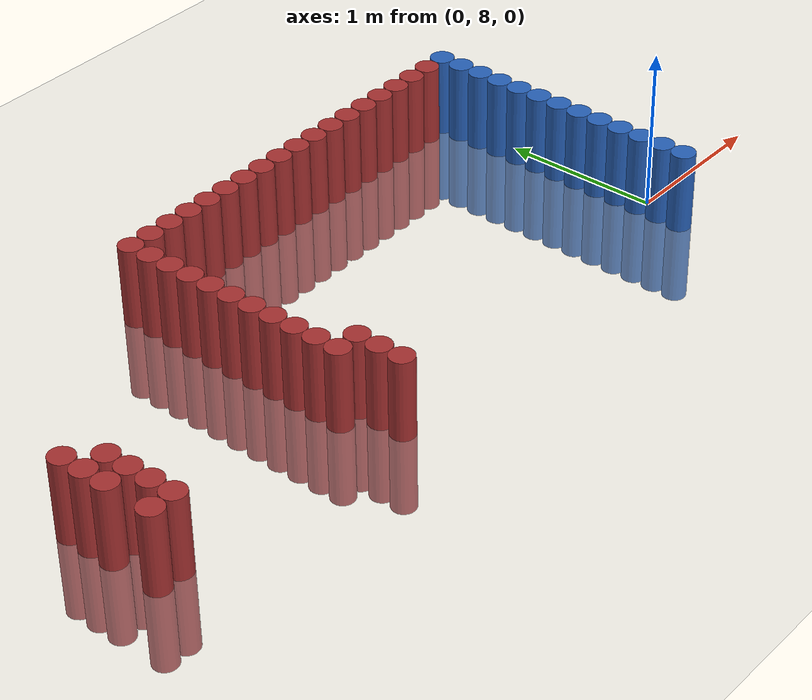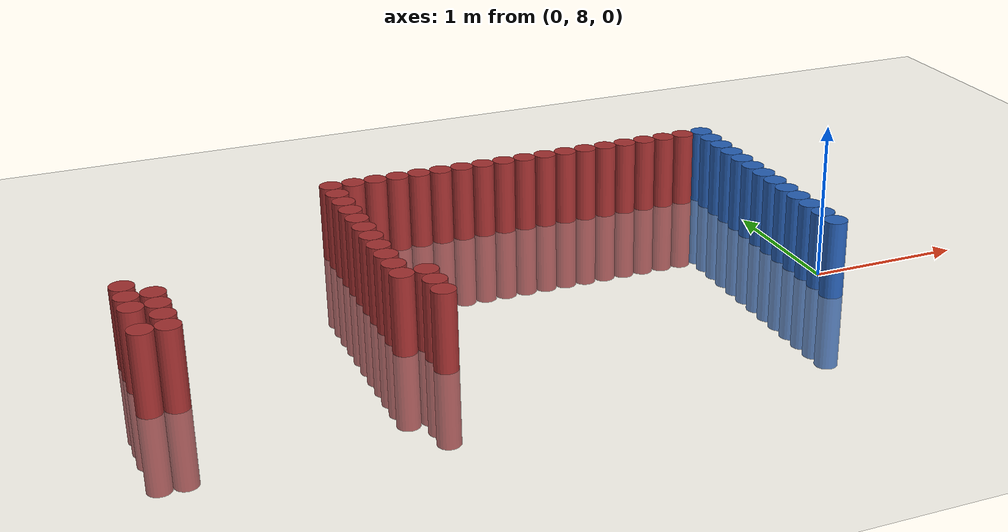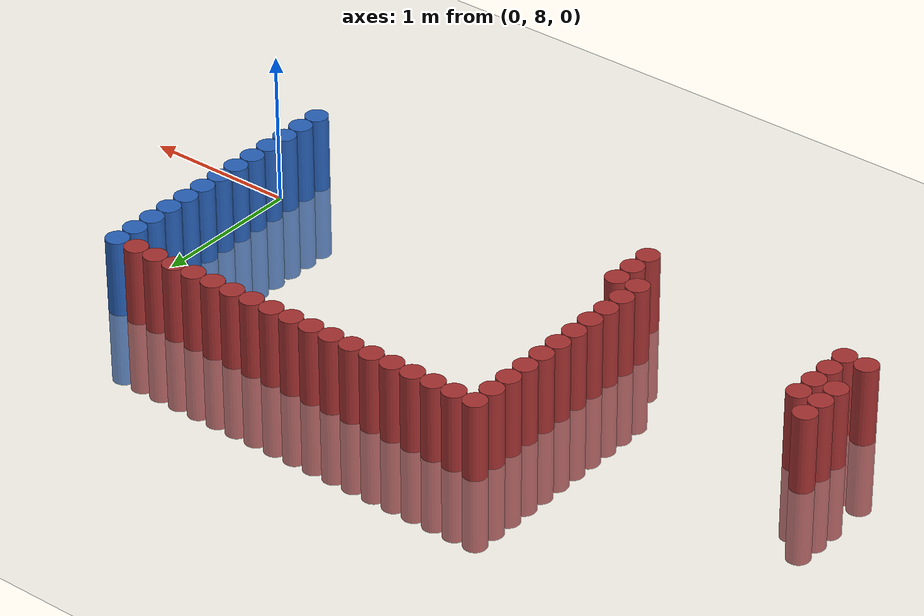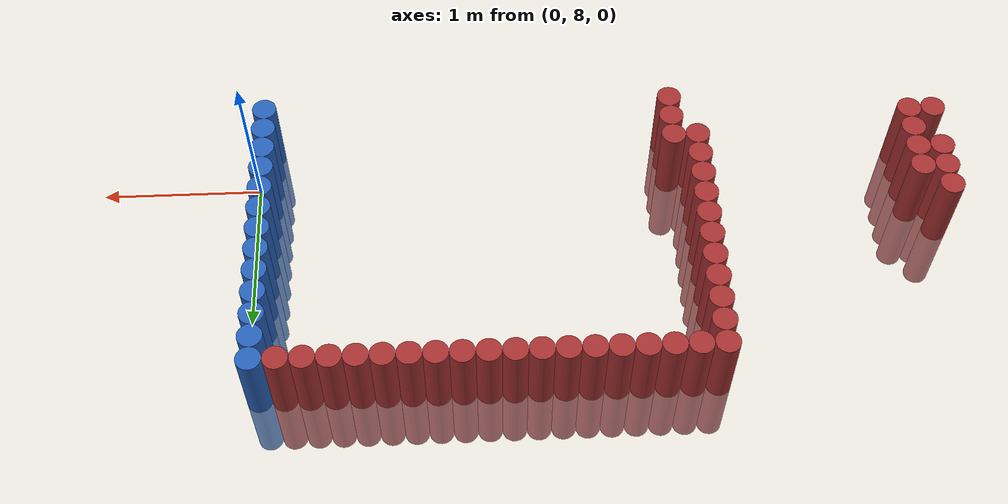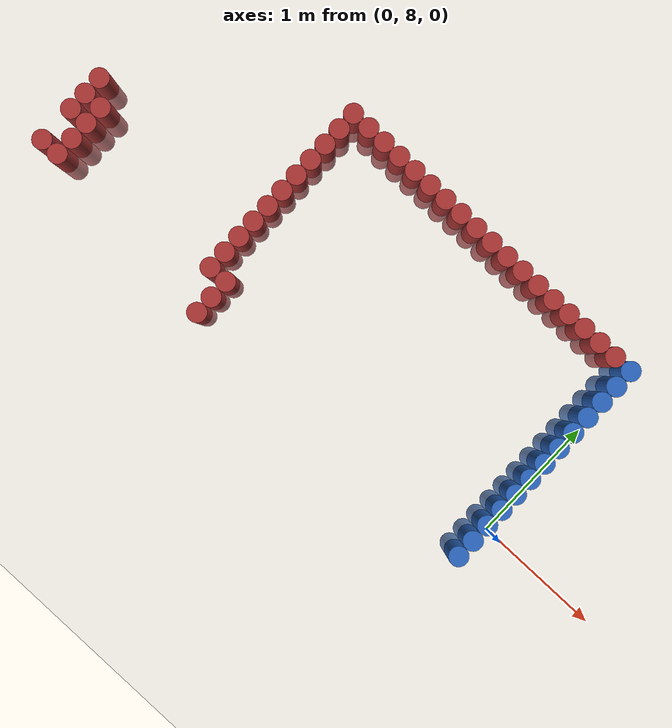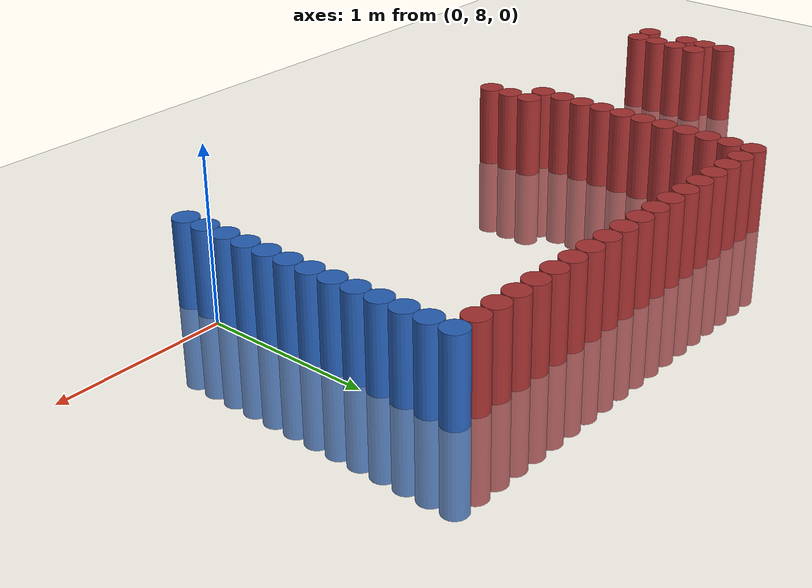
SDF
<sdf version="1.6">
 <world name="default">
  <model name="ground_plane">
   <static>1</static>
   <link name="link">
    <collision name="collision">
     <geometry><plane><normal>0 0 1</normal><size>100 100</size></plane></geometry>
     <surface><friction><ode><mu>100</mu><mu2>50</mu2></ode></friction></surface>
    </collision>
    <visual name="visual">
     <cast_shadows>0</cast_shadows>
     <geometry><plane><normal>0 0 1</normal><size>100 100</size></plane></geometry>
     <material>
      <script><uri>file://media/materials/scripts/gazebo.material</uri><name>Gazebo/Grey</name></script>
     </material>
    </visual>
   </link>
  </model>
  <model name="unit_cylinder_251">
   <static>1</static>
   <pose>-4.275000 7.875000 0.000000 0.000000 0.000000 0.000000</pose>
   <link name="link">
    <inertial>
     <mass>1</mass>
     <inertia><ixx>0.145833</ixx><ixy>0</ixy><ixz>0</ixz><iyy>0.145833</iyy><iyz>0</iyz><izz>0.125</izz></inertia>
    </inertial>
    <collision name="collision">
     <geometry><cylinder><radius>0.075000</radius><length>1</length></cylinder></geometry>
    </collision>
    <visual name="visual">
     <geometry><cylinder><radius>0.075000</radius><length>1</length></cylinder></geometry>
     <material>
      <ambient>0.648000 0.192000 0.192000 1</ambient>
      <diffuse>0.648000 0.192000 0.192000 1</diffuse>
     </material>
     <material>
      <script><name>Gazebo/Grey</name><uri>file://media/materials/scripts/gazebo.material</uri></script>
     </material>
    </visual>
   </link>
  </model>
  <model name="unit_cylinder_252">
   <static>1</static>
   <pose>-4.275000 8.175000 0.000000 0.000000 0.000000 0.000000</pose>
   <link name="link">
    <inertial>
     <mass>1</mass>
     <inertia><ixx>0.145833</ixx><ixy>0</ixy><ixz>0</ixz><iyy>0.145833</iyy><iyz>0</iyz><izz>0.125</izz></inertia>
    </inertial>
    <collision name="collision">
     <geometry><cylinder><radius>0.075000</radius><length>1</length></cylinder></geometry>
    </collision>
    <visual name="visual">
     <geometry><cylinder><radius>0.075000</radius><length>1</length></cylinder></geometry>
     <material>
      <ambient>0.648000 0.192000 0.192000 1</ambient>
      <diffuse>0.648000 0.192000 0.192000 1</diffuse>
     </material>
     <material>
      <script><name>Gazebo/Grey</name><uri>file://media/materials/scripts/gazebo.material</uri></script>
     </material>
    </visual>
   </link>
  </model>
  <model name="unit_cylinder_253">
   <static>1</static>
   <pose>-4.275000 8.325000 0.000000 0.000000 0.000000 0.000000</pose>
   <link name="link">
    <inertial>
     <mass>1</mass>
     <inertia><ixx>0.145833</ixx><ixy>0</ixy><ixz>0</ixz><iyy>0.145833</iyy><iyz>0</iyz><izz>0.125</izz></inertia>
    </inertial>
    <collision name="collision">
     <geometry><cylinder><radius>0.075000</radius><length>1</length></cylinder></geometry>
    </collision>
    <visual name="visual">
     <geometry><cylinder><radius>0.075000</radius><length>1</length></cylinder></geometry>
     <material>
      <ambient>0.648000 0.192000 0.192000 1</ambient>
      <diffuse>0.648000 0.192000 0.192000 1</diffuse>
     </material>
     <material>
      <script><name>Gazebo/Grey</name><uri>file://media/materials/scripts/gazebo.material</uri></script>
     </material>
    </visual>
   </link>
  </model>
  <model name="unit_cylinder_254">
   <static>1</static>
   <pose>-4.275000 8.475000 0.000000 0.000000 0.000000 0.000000</pose>
   <link name="link">
    <inertial>
     <mass>1</mass>
     <inertia><ixx>0.145833</ixx><ixy>0</ixy><ixz>0</ixz><iyy>0.145833</iyy><iyz>0</iyz><izz>0.125</izz></inertia>
    </inertial>
    <collision name="collision">
     <geometry><cylinder><radius>0.075000</radius><length>1</length></cylinder></geometry>
    </collision>
    <visual name="visual">
     <geometry><cylinder><radius>0.075000</radius><length>1</length></cylinder></geometry>
     <material>
      <ambient>0.648000 0.192000 0.192000 1</ambient>
      <diffuse>0.648000 0.192000 0.192000 1</diffuse>
     </material>
     <material>
      <script><name>Gazebo/Grey</name><uri>file://media/materials/scripts/gazebo.material</uri></script>
     </material>
    </visual>
   </link>
  </model>
  <model name="unit_cylinder_263">
   <static>1</static>
   <pose>-4.125000 7.875000 0.000000 0.000000 0.000000 0.000000</pose>
   <link name="link">
    <inertial>
     <mass>1</mass>
     <inertia><ixx>0.145833</ixx><ixy>0</ixy><ixz>0</ixz><iyy>0.145833</iyy><iyz>0</iyz><izz>0.125</izz></inertia>
    </inertial>
    <collision name="collision">
     <geometry><cylinder><radius>0.075000</radius><length>1</length></cylinder></geometry>
    </collision>
    <visual name="visual">
     <geometry><cylinder><radius>0.075000</radius><length>1</length></cylinder></geometry>
     <material>
      <ambient>0.648000 0.192000 0.192000 1</ambient>
      <diffuse>0.648000 0.192000 0.192000 1</diffuse>
     </material>
     <material>
      <script><name>Gazebo/Grey</name><uri>file://media/materials/scripts/gazebo.material</uri></script>
     </material>
    </visual>
   </link>
  </model>
  <model name="unit_cylinder_264">
   <static>1</static>
   <pose>-4.125000 8.025000 0.000000 0.000000 0.000000 0.000000</pose>
   <link name="link">
    <inertial>
     <mass>1</mass>
     <inertia><ixx>0.145833</ixx><ixy>0</ixy><ixz>0</ixz><iyy>0.145833</iyy><iyz>0</iyz><izz>0.125</izz></inertia>
    </inertial>
    <collision name="collision">
     <geometry><cylinder><radius>0.075000</radius><length>1</length></cylinder></geometry>
    </collision>
    <visual name="visual">
     <geometry><cylinder><radius>0.075000</radius><length>1</length></cylinder></geometry>
     <material>
      <ambient>0.648000 0.192000 0.192000 1</ambient>
      <diffuse>0.648000 0.192000 0.192000 1</diffuse>
     </material>
     <material>
      <script><name>Gazebo/Grey</name><uri>file://media/materials/scripts/gazebo.material</uri></script>
     </material>
    </visual>
   </link>
  </model>
  <model name="unit_cylinder_265">
   <static>1</static>
   <pose>-4.125000 8.175000 0.000000 0.000000 0.000000 0.000000</pose>
   <link name="link">
    <inertial>
     <mass>1</mass>
     <inertia><ixx>0.145833</ixx><ixy>0</ixy><ixz>0</ixz><iyy>0.145833</iyy><iyz>0</iyz><izz>0.125</izz></inertia>
    </inertial>
    <collision name="collision">
     <geometry><cylinder><radius>0.075000</radius><length>1</length></cylinder></geometry>
    </collision>
    <visual name="visual">
     <geometry><cylinder><radius>0.075000</radius><length>1</length></cylinder></geometry>
     <material>
      <ambient>0.648000 0.192000 0.192000 1</ambient>
      <diffuse>0.648000 0.192000 0.192000 1</diffuse>
     </material>
     <material>
      <script><name>Gazebo/Grey</name><uri>file://media/materials/scripts/gazebo.material</uri></script>
     </material>
    </visual>
   </link>
  </model>
  <model name="unit_cylinder_266">
   <static>1</static>
   <pose>-4.125000 8.325000 0.000000 0.000000 0.000000 0.000000</pose>
   <link name="link">
    <inertial>
     <mass>1</mass>
     <inertia><ixx>0.145833</ixx><ixy>0</ixy><ixz>0</ixz><iyy>0.145833</iyy><iyz>0</iyz><izz>0.125</izz></inertia>
    </inertial>
    <collision name="collision">
     <geometry><cylinder><radius>0.075000</radius><length>1</length></cylinder></geometry>
    </collision>
    <visual name="visual">
     <geometry><cylinder><radius>0.075000</radius><length>1</length></cylinder></geometry>
     <material>
      <ambient>0.648000 0.192000 0.192000 1</ambient>
      <diffuse>0.648000 0.192000 0.192000 1</diffuse>
     </material>
     <material>
      <script><name>Gazebo/Grey</name><uri>file://media/materials/scripts/gazebo.material</uri></script>
     </material>
    </visual>
   </link>
  </model>
  <model name="unit_cylinder_271">
   <static>1</static>
   <pose>-2.775000 8.025000 0.000000 0.000000 0.000000 0.000000</pose>
   <link name="link">
    <inertial>
     <mass>1</mass>
     <inertia><ixx>0.145833</ixx><ixy>0</ixy><ixz>0</ixz><iyy>0.145833</iyy><iyz>0</iyz><izz>0.125</izz></inertia>
    </inertial>
    <collision name="collision">
     <geometry><cylinder><radius>0.075000</radius><length>1</length></cylinder></geometry>
    </collision>
    <visual name="visual">
     <geometry><cylinder><radius>0.075000</radius><length>1</length></cylinder></geometry>
     <material>
      <ambient>0.648000 0.192000 0.192000 1</ambient>
      <diffuse>0.648000 0.192000 0.192000 1</diffuse>
     </material>
     <material>
      <script><name>Gazebo/Grey</name><uri>file://media/materials/scripts/gazebo.material</uri></script>
     </material>
    </visual>
   </link>
  </model>
  <model name="unit_cylinder_272">
   <static>1</static>
   <pose>-2.775000 8.175000 0.000000 0.000000 0.000000 0.000000</pose>
   <link name="link">
    <inertial>
     <mass>1</mass>
     <inertia><ixx>0.145833</ixx><ixy>0</ixy><ixz>0</ixz><iyy>0.145833</iyy><iyz>0</iyz><izz>0.125</izz></inertia>
    </inertial>
    <collision name="collision">
     <geometry><cylinder><radius>0.075000</radius><length>1</length></cylinder></geometry>
    </collision>
    <visual name="visual">
     <geometry><cylinder><radius>0.075000</radius><length>1</length></cylinder></geometry>
     <material>
      <ambient>0.648000 0.192000 0.192000 1</ambient>
      <diffuse>0.648000 0.192000 0.192000 1</diffuse>
     </material>
     <material>
      <script><name>Gazebo/Grey</name><uri>file://media/materials/scripts/gazebo.material</uri></script>
     </material>
    </visual>
   </link>
  </model>
  <model name="unit_cylinder_273">
   <static>1</static>
   <pose>-2.775000 8.325000 0.000000 0.000000 0.000000 0.000000</pose>
   <link name="link">
    <inertial>
     <mass>1</mass>
     <inertia><ixx>0.145833</ixx><ixy>0</ixy><ixz>0</ixz><iyy>0.145833</iyy><iyz>0</iyz><izz>0.125</izz></inertia>
    </inertial>
    <collision name="collision">
     <geometry><cylinder><radius>0.075000</radius><length>1</length></cylinder></geometry>
    </collision>
    <visual name="visual">
     <geometry><cylinder><radius>0.075000</radius><length>1</length></cylinder></geometry>
     <material>
      <ambient>0.648000 0.192000 0.192000 1</ambient>
      <diffuse>0.648000 0.192000 0.192000 1</diffuse>
     </material>
     <material>
      <script><name>Gazebo/Grey</name><uri>file://media/materials/scripts/gazebo.material</uri></script>
     </material>
    </visual>
   </link>
  </model>
  <model name="unit_cylinder_274">
   <static>1</static>
   <pose>-2.775000 8.475000 0.000000 0.000000 0.000000 0.000000</pose>
   <link name="link">
    <inertial>
     <mass>1</mass>
     <inertia><ixx>0.145833</ixx><ixy>0</ixy><ixz>0</ixz><iyy>0.145833</iyy><iyz>0</iyz><izz>0.125</izz></inertia>
    </inertial>
    <collision name="collision">
     <geometry><cylinder><radius>0.075000</radius><length>1</length></cylinder></geometry>
    </collision>
    <visual name="visual">
     <geometry><cylinder><radius>0.075000</radius><length>1</length></cylinder></geometry>
     <material>
      <ambient>0.648000 0.192000 0.192000 1</ambient>
      <diffuse>0.648000 0.192000 0.192000 1</diffuse>
     </material>
     <material>
      <script><name>Gazebo/Grey</name><uri>file://media/materials/scripts/gazebo.material</uri></script>
     </material>
    </visual>
   </link>
  </model>
  <model name="unit_cylinder_275">
   <static>1</static>
   <pose>-2.775000 8.625000 0.000000 0.000000 0.000000 0.000000</pose>
   <link name="link">
    <inertial>
     <mass>1</mass>
     <inertia><ixx>0.145833</ixx><ixy>0</ixy><ixz>0</ixz><iyy>0.145833</iyy><iyz>0</iyz><izz>0.125</izz></inertia>
    </inertial>
    <collision name="collision">
     <geometry><cylinder><radius>0.075000</radius><length>1</length></cylinder></geometry>
    </collision>
    <visual name="visual">
     <geometry><cylinder><radius>0.075000</radius><length>1</length></cylinder></geometry>
     <material>
      <ambient>0.648000 0.192000 0.192000 1</ambient>
      <diffuse>0.648000 0.192000 0.192000 1</diffuse>
     </material>
     <material>
      <script><name>Gazebo/Grey</name><uri>file://media/materials/scripts/gazebo.material</uri></script>
     </material>
    </visual>
   </link>
  </model>
  <model name="unit_cylinder_276">
   <static>1</static>
   <pose>-2.775000 8.775000 0.000000 0.000000 0.000000 0.000000</pose>
   <link name="link">
    <inertial>
     <mass>1</mass>
     <inertia><ixx>0.145833</ixx><ixy>0</ixy><ixz>0</ixz><iyy>0.145833</iyy><iyz>0</iyz><izz>0.125</izz></inertia>
    </inertial>
    <collision name="collision">
     <geometry><cylinder><radius>0.075000</radius><length>1</length></cylinder></geometry>
    </collision>
    <visual name="visual">
     <geometry><cylinder><radius>0.075000</radius><length>1</length></cylinder></geometry>
     <material>
      <ambient>0.648000 0.192000 0.192000 1</ambient>
      <diffuse>0.648000 0.192000 0.192000 1</diffuse>
     </material>
     <material>
      <script><name>Gazebo/Grey</name><uri>file://media/materials/scripts/gazebo.material</uri></script>
     </material>
    </visual>
   </link>
  </model>
  <model name="unit_cylinder_277">
   <static>1</static>
   <pose>-2.775000 8.925000 0.000000 0.000000 0.000000 0.000000</pose>
   <link name="link">
    <inertial>
     <mass>1</mass>
     <inertia><ixx>0.145833</ixx><ixy>0</ixy><ixz>0</ixz><iyy>0.145833</iyy><iyz>0</iyz><izz>0.125</izz></inertia>
    </inertial>
    <collision name="collision">
     <geometry><cylinder><radius>0.075000</radius><length>1</length></cylinder></geometry>
    </collision>
    <visual name="visual">
     <geometry><cylinder><radius>0.075000</radius><length>1</length></cylinder></geometry>
     <material>
      <ambient>0.648000 0.192000 0.192000 1</ambient>
      <diffuse>0.648000 0.192000 0.192000 1</diffuse>
     </material>
     <material>
      <script><name>Gazebo/Grey</name><uri>file://media/materials/scripts/gazebo.material</uri></script>
     </material>
    </visual>
   </link>
  </model>
  <model name="unit_cylinder_278">
   <static>1</static>
   <pose>-2.775000 9.075000 0.000000 0.000000 0.000000 0.000000</pose>
   <link name="link">
    <inertial>
     <mass>1</mass>
     <inertia><ixx>0.145833</ixx><ixy>0</ixy><ixz>0</ixz><iyy>0.145833</iyy><iyz>0</iyz><izz>0.125</izz></inertia>
    </inertial>
    <collision name="collision">
     <geometry><cylinder><radius>0.075000</radius><length>1</length></cylinder></geometry>
    </collision>
    <visual name="visual">
     <geometry><cylinder><radius>0.075000</radius><length>1</length></cylinder></geometry>
     <material>
      <ambient>0.648000 0.192000 0.192000 1</ambient>
      <diffuse>0.648000 0.192000 0.192000 1</diffuse>
     </material>
     <material>
      <script><name>Gazebo/Grey</name><uri>file://media/materials/scripts/gazebo.material</uri></script>
     </material>
    </visual>
   </link>
  </model>
  <model name="unit_cylinder_279">
   <static>1</static>
   <pose>-2.775000 9.225000 0.000000 0.000000 0.000000 0.000000</pose>
   <link name="link">
    <inertial>
     <mass>1</mass>
     <inertia><ixx>0.145833</ixx><ixy>0</ixy><ixz>0</ixz><iyy>0.145833</iyy><iyz>0</iyz><izz>0.125</izz></inertia>
    </inertial>
    <collision name="collision">
     <geometry><cylinder><radius>0.075000</radius><length>1</length></cylinder></geometry>
    </collision>
    <visual name="visual">
     <geometry><cylinder><radius>0.075000</radius><length>1</length></cylinder></geometry>
     <material>
      <ambient>0.648000 0.192000 0.192000 1</ambient>
      <diffuse>0.648000 0.192000 0.192000 1</diffuse>
     </material>
     <material>
      <script><name>Gazebo/Grey</name><uri>file://media/materials/scripts/gazebo.material</uri></script>
     </material>
    </visual>
   </link>
  </model>
  <model name="unit_cylinder_280">
   <static>1</static>
   <pose>-2.775000 9.375000 0.000000 0.000000 0.000000 0.000000</pose>
   <link name="link">
    <inertial>
     <mass>1</mass>
     <inertia><ixx>0.145833</ixx><ixy>0</ixy><ixz>0</ixz><iyy>0.145833</iyy><iyz>0</iyz><izz>0.125</izz></inertia>
    </inertial>
    <collision name="collision">
     <geometry><cylinder><radius>0.075000</radius><length>1</length></cylinder></geometry>
    </collision>
    <visual name="visual">
     <geometry><cylinder><radius>0.075000</radius><length>1</length></cylinder></geometry>
     <material>
      <ambient>0.648000 0.192000 0.192000 1</ambient>
      <diffuse>0.648000 0.192000 0.192000 1</diffuse>
     </material>
     <material>
      <script><name>Gazebo/Grey</name><uri>file://media/materials/scripts/gazebo.material</uri></script>
     </material>
    </visual>
   </link>
  </model>
  <model name="unit_cylinder_281">
   <static>1</static>
   <pose>-2.775000 9.525000 0.000000 0.000000 0.000000 0.000000</pose>
   <link name="link">
    <inertial>
     <mass>1</mass>
     <inertia><ixx>0.145833</ixx><ixy>0</ixy><ixz>0</ixz><iyy>0.145833</iyy><iyz>0</iyz><izz>0.125</izz></inertia>
    </inertial>
    <collision name="collision">
     <geometry><cylinder><radius>0.075000</radius><length>1</length></cylinder></geometry>
    </collision>
    <visual name="visual">
     <geometry><cylinder><radius>0.075000</radius><length>1</length></cylinder></geometry>
     <material>
      <ambient>0.648000 0.192000 0.192000 1</ambient>
      <diffuse>0.648000 0.192000 0.192000 1</diffuse>
     </material>
     <material>
      <script><name>Gazebo/Grey</name><uri>file://media/materials/scripts/gazebo.material</uri></script>
     </material>
    </visual>
   </link>
  </model>
  <model name="unit_cylinder_299">
   <static>1</static>
   <pose>-2.625000 7.725000 0.000000 0.000000 0.000000 0.000000</pose>
   <link name="link">
    <inertial>
     <mass>1</mass>
     <inertia><ixx>0.145833</ixx><ixy>0</ixy><ixz>0</ixz><iyy>0.145833</iyy><iyz>0</iyz><izz>0.125</izz></inertia>
    </inertial>
    <collision name="collision">
     <geometry><cylinder><radius>0.075000</radius><length>1</length></cylinder></geometry>
    </collision>
    <visual name="visual">
     <geometry><cylinder><radius>0.075000</radius><length>1</length></cylinder></geometry>
     <material>
      <ambient>0.648000 0.192000 0.192000 1</ambient>
      <diffuse>0.648000 0.192000 0.192000 1</diffuse>
     </material>
     <material>
      <script><name>Gazebo/Grey</name><uri>file://media/materials/scripts/gazebo.material</uri></script>
     </material>
    </visual>
   </link>
  </model>
  <model name="unit_cylinder_300">
   <static>1</static>
   <pose>-2.625000 7.875000 0.000000 0.000000 0.000000 0.000000</pose>
   <link name="link">
    <inertial>
     <mass>1</mass>
     <inertia><ixx>0.145833</ixx><ixy>0</ixy><ixz>0</ixz><iyy>0.145833</iyy><iyz>0</iyz><izz>0.125</izz></inertia>
    </inertial>
    <collision name="collision">
     <geometry><cylinder><radius>0.075000</radius><length>1</length></cylinder></geometry>
    </collision>
    <visual name="visual">
     <geometry><cylinder><radius>0.075000</radius><length>1</length></cylinder></geometry>
     <material>
      <ambient>0.648000 0.192000 0.192000 1</ambient>
      <diffuse>0.648000 0.192000 0.192000 1</diffuse>
     </material>
     <material>
      <script><name>Gazebo/Grey</name><uri>file://media/materials/scripts/gazebo.material</uri></script>
     </material>
    </visual>
   </link>
  </model>
  <model name="unit_cylinder_301">
   <static>1</static>
   <pose>-2.625000 8.025000 0.000000 0.000000 0.000000 0.000000</pose>
   <link name="link">
    <inertial>
     <mass>1</mass>
     <inertia><ixx>0.145833</ixx><ixy>0</ixy><ixz>0</ixz><iyy>0.145833</iyy><iyz>0</iyz><izz>0.125</izz></inertia>
    </inertial>
    <collision name="collision">
     <geometry><cylinder><radius>0.075000</radius><length>1</length></cylinder></geometry>
    </collision>
    <visual name="visual">
     <geometry><cylinder><radius>0.075000</radius><length>1</length></cylinder></geometry>
     <material>
      <ambient>0.648000 0.192000 0.192000 1</ambient>
      <diffuse>0.648000 0.192000 0.192000 1</diffuse>
     </material>
     <material>
      <script><name>Gazebo/Grey</name><uri>file://media/materials/scripts/gazebo.material</uri></script>
     </material>
    </visual>
   </link>
  </model>
  <model name="unit_cylinder_302">
   <static>1</static>
   <pose>-2.625000 9.525000 0.000000 0.000000 0.000000 0.000000</pose>
   <link name="link">
    <inertial>
     <mass>1</mass>
     <inertia><ixx>0.145833</ixx><ixy>0</ixy><ixz>0</ixz><iyy>0.145833</iyy><iyz>0</iyz><izz>0.125</izz></inertia>
    </inertial>
    <collision name="collision">
     <geometry><cylinder><radius>0.075000</radius><length>1</length></cylinder></geometry>
    </collision>
    <visual name="visual">
     <geometry><cylinder><radius>0.075000</radius><length>1</length></cylinder></geometry>
     <material>
      <ambient>0.648000 0.192000 0.192000 1</ambient>
      <diffuse>0.648000 0.192000 0.192000 1</diffuse>
     </material>
     <material>
      <script><name>Gazebo/Grey</name><uri>file://media/materials/scripts/gazebo.material</uri></script>
     </material>
    </visual>
   </link>
  </model>
  <model name="unit_cylinder_304">
   <static>1</static>
   <pose>-2.475000 9.525000 0.000000 0.000000 0.000000 0.000000</pose>
   <link name="link">
    <inertial>
     <mass>1</mass>
     <inertia><ixx>0.145833</ixx><ixy>0</ixy><ixz>0</ixz><iyy>0.145833</iyy><iyz>0</iyz><izz>0.125</izz></inertia>
    </inertial>
    <collision name="collision">
     <geometry><cylinder><radius>0.075000</radius><length>1</length></cylinder></geometry>
    </collision>
    <visual name="visual">
     <geometry><cylinder><radius>0.075000</radius><length>1</length></cylinder></geometry>
     <material>
      <ambient>0.648000 0.192000 0.192000 1</ambient>
      <diffuse>0.648000 0.192000 0.192000 1</diffuse>
     </material>
     <material>
      <script><name>Gazebo/Grey</name><uri>file://media/materials/scripts/gazebo.material</uri></script>
     </material>
    </visual>
   </link>
  </model>
  <model name="unit_cylinder_306">
   <static>1</static>
   <pose>-2.325000 9.525000 0.000000 0.000000 0.000000 0.000000</pose>
   <link name="link">
    <inertial>
     <mass>1</mass>
     <inertia><ixx>0.145833</ixx><ixy>0</ixy><ixz>0</ixz><iyy>0.145833</iyy><iyz>0</iyz><izz>0.125</izz></inertia>
    </inertial>
    <collision name="collision">
     <geometry><cylinder><radius>0.075000</radius><length>1</length></cylinder></geometry>
    </collision>
    <visual name="visual">
     <geometry><cylinder><radius>0.075000</radius><length>1</length></cylinder></geometry>
     <material>
      <ambient>0.648000 0.192000 0.192000 1</ambient>
      <diffuse>0.648000 0.192000 0.192000 1</diffuse>
     </material>
     <material>
      <script><name>Gazebo/Grey</name><uri>file://media/materials/scripts/gazebo.material</uri></script>
     </material>
    </visual>
   </link>
  </model>
  <model name="unit_cylinder_308">
   <static>1</static>
   <pose>-2.175000 9.525000 0.000000 0.000000 0.000000 0.000000</pose>
   <link name="link">
    <inertial>
     <mass>1</mass>
     <inertia><ixx>0.145833</ixx><ixy>0</ixy><ixz>0</ixz><iyy>0.145833</iyy><iyz>0</iyz><izz>0.125</izz></inertia>
    </inertial>
    <collision name="collision">
     <geometry><cylinder><radius>0.075000</radius><length>1</length></cylinder></geometry>
    </collision>
    <visual name="visual">
     <geometry><cylinder><radius>0.075000</radius><length>1</length></cylinder></geometry>
     <material>
      <ambient>0.648000 0.192000 0.192000 1</ambient>
      <diffuse>0.648000 0.192000 0.192000 1</diffuse>
     </material>
     <material>
      <script><name>Gazebo/Grey</name><uri>file://media/materials/scripts/gazebo.material</uri></script>
     </material>
    </visual>
   </link>
  </model>
  <model name="unit_cylinder_310">
   <static>1</static>
   <pose>-2.025000 9.525000 0.000000 0.000000 0.000000 0.000000</pose>
   <link name="link">
    <inertial>
     <mass>1</mass>
     <inertia><ixx>0.145833</ixx><ixy>0</ixy><ixz>0</ixz><iyy>0.145833</iyy><iyz>0</iyz><izz>0.125</izz></inertia>
    </inertial>
    <collision name="collision">
     <geometry><cylinder><radius>0.075000</radius><length>1</length></cylinder></geometry>
    </collision>
    <visual name="visual">
     <geometry><cylinder><radius>0.075000</radius><length>1</length></cylinder></geometry>
     <material>
      <ambient>0.648000 0.192000 0.192000 1</ambient>
      <diffuse>0.648000 0.192000 0.192000 1</diffuse>
     </material>
     <material>
      <script><name>Gazebo/Grey</name><uri>file://media/materials/scripts/gazebo.material</uri></script>
     </material>
    </visual>
   </link>
  </model>
  <model name="unit_cylinder_312">
   <static>1</static>
   <pose>-1.875000 9.525000 0.000000 0.000000 0.000000 0.000000</pose>
   <link name="link">
    <inertial>
     <mass>1</mass>
     <inertia><ixx>0.145833</ixx><ixy>0</ixy><ixz>0</ixz><iyy>0.145833</iyy><iyz>0</iyz><izz>0.125</izz></inertia>
    </inertial>
    <collision name="collision">
     <geometry><cylinder><radius>0.075000</radius><length>1</length></cylinder></geometry>
    </collision>
    <visual name="visual">
     <geometry><cylinder><radius>0.075000</radius><length>1</length></cylinder></geometry>
     <material>
      <ambient>0.648000 0.192000 0.192000 1</ambient>
      <diffuse>0.648000 0.192000 0.192000 1</diffuse>
     </material>
     <material>
      <script><name>Gazebo/Grey</name><uri>file://media/materials/scripts/gazebo.material</uri></script>
     </material>
    </visual>
   </link>
  </model>
  <model name="unit_cylinder_314">
   <static>1</static>
   <pose>-1.725000 9.525000 0.000000 0.000000 0.000000 0.000000</pose>
   <link name="link">
    <inertial>
     <mass>1</mass>
     <inertia><ixx>0.145833</ixx><ixy>0</ixy><ixz>0</ixz><iyy>0.145833</iyy><iyz>0</iyz><izz>0.125</izz></inertia>
    </inertial>
    <collision name="collision">
     <geometry><cylinder><radius>0.075000</radius><length>1</length></cylinder></geometry>
    </collision>
    <visual name="visual">
     <geometry><cylinder><radius>0.075000</radius><length>1</length></cylinder></geometry>
     <material>
      <ambient>0.648000 0.192000 0.192000 1</ambient>
      <diffuse>0.648000 0.192000 0.192000 1</diffuse>
     </material>
     <material>
      <script><name>Gazebo/Grey</name><uri>file://media/materials/scripts/gazebo.material</uri></script>
     </material>
    </visual>
   </link>
  </model>
  <model name="unit_cylinder_316">
   <static>1</static>
   <pose>-1.575000 9.525000 0.000000 0.000000 0.000000 0.000000</pose>
   <link name="link">
    <inertial>
     <mass>1</mass>
     <inertia><ixx>0.145833</ixx><ixy>0</ixy><ixz>0</ixz><iyy>0.145833</iyy><iyz>0</iyz><izz>0.125</izz></inertia>
    </inertial>
    <collision name="collision">
     <geometry><cylinder><radius>0.075000</radius><length>1</length></cylinder></geometry>
    </collision>
    <visual name="visual">
     <geometry><cylinder><radius>0.075000</radius><length>1</length></cylinder></geometry>
     <material>
      <ambient>0.648000 0.192000 0.192000 1</ambient>
      <diffuse>0.648000 0.192000 0.192000 1</diffuse>
     </material>
     <material>
      <script><name>Gazebo/Grey</name><uri>file://media/materials/scripts/gazebo.material</uri></script>
     </material>
    </visual>
   </link>
  </model>
  <model name="unit_cylinder_318">
   <static>1</static>
   <pose>-1.425000 9.525000 0.000000 0.000000 0.000000 0.000000</pose>
   <link name="link">
    <inertial>
     <mass>1</mass>
     <inertia><ixx>0.145833</ixx><ixy>0</ixy><ixz>0</ixz><iyy>0.145833</iyy><iyz>0</iyz><izz>0.125</izz></inertia>
    </inertial>
    <collision name="collision">
     <geometry><cylinder><radius>0.075000</radius><length>1</length></cylinder></geometry>
    </collision>
    <visual name="visual">
     <geometry><cylinder><radius>0.075000</radius><length>1</length></cylinder></geometry>
     <material>
      <ambient>0.648000 0.192000 0.192000 1</ambient>
      <diffuse>0.648000 0.192000 0.192000 1</diffuse>
     </material>
     <material>
      <script><name>Gazebo/Grey</name><uri>file://media/materials/scripts/gazebo.material</uri></script>
     </material>
    </visual>
   </link>
  </model>
  <model name="unit_cylinder_320">
   <static>1</static>
   <pose>-1.275000 9.525000 0.000000 0.000000 0.000000 0.000000</pose>
   <link name="link">
    <inertial>
     <mass>1</mass>
     <inertia><ixx>0.145833</ixx><ixy>0</ixy><ixz>0</ixz><iyy>0.145833</iyy><iyz>0</iyz><izz>0.125</izz></inertia>
    </inertial>
    <collision name="collision">
     <geometry><cylinder><radius>0.075000</radius><length>1</length></cylinder></geometry>
    </collision>
    <visual name="visual">
     <geometry><cylinder><radius>0.075000</radius><length>1</length></cylinder></geometry>
     <material>
      <ambient>0.648000 0.192000 0.192000 1</ambient>
      <diffuse>0.648000 0.192000 0.192000 1</diffuse>
     </material>
     <material>
      <script><name>Gazebo/Grey</name><uri>file://media/materials/scripts/gazebo.material</uri></script>
     </material>
    </visual>
   </link>
  </model>
  <model name="unit_cylinder_322">
   <static>1</static>
   <pose>-1.125000 9.525000 0.000000 0.000000 0.000000 0.000000</pose>
   <link name="link">
    <inertial>
     <mass>1</mass>
     <inertia><ixx>0.145833</ixx><ixy>0</ixy><ixz>0</ixz><iyy>0.145833</iyy><iyz>0</iyz><izz>0.125</izz></inertia>
    </inertial>
    <collision name="collision">
     <geometry><cylinder><radius>0.075000</radius><length>1</length></cylinder></geometry>
    </collision>
    <visual name="visual">
     <geometry><cylinder><radius>0.075000</radius><length>1</length></cylinder></geometry>
     <material>
      <ambient>0.648000 0.192000 0.192000 1</ambient>
      <diffuse>0.648000 0.192000 0.192000 1</diffuse>
     </material>
     <material>
      <script><name>Gazebo/Grey</name><uri>file://media/materials/scripts/gazebo.material</uri></script>
     </material>
    </visual>
   </link>
  </model>
  <model name="unit_cylinder_324">
   <static>1</static>
   <pose>-0.975000 9.525000 0.000000 0.000000 0.000000 0.000000</pose>
   <link name="link">
    <inertial>
     <mass>1</mass>
     <inertia><ixx>0.145833</ixx><ixy>0</ixy><ixz>0</ixz><iyy>0.145833</iyy><iyz>0</iyz><izz>0.125</izz></inertia>
    </inertial>
    <collision name="collision">
     <geometry><cylinder><radius>0.075000</radius><length>1</length></cylinder></geometry>
    </collision>
    <visual name="visual">
     <geometry><cylinder><radius>0.075000</radius><length>1</length></cylinder></geometry>
     <material>
      <ambient>0.648000 0.192000 0.192000 1</ambient>
      <diffuse>0.648000 0.192000 0.192000 1</diffuse>
     </material>
     <material>
      <script><name>Gazebo/Grey</name><uri>file://media/materials/scripts/gazebo.material</uri></script>
     </material>
    </visual>
   </link>
  </model>
  <model name="unit_cylinder_326">
   <static>1</static>
   <pose>-0.825000 9.525000 0.000000 0.000000 0.000000 0.000000</pose>
   <link name="link">
    <inertial>
     <mass>1</mass>
     <inertia><ixx>0.145833</ixx><ixy>0</ixy><ixz>0</ixz><iyy>0.145833</iyy><iyz>0</iyz><izz>0.125</izz></inertia>
    </inertial>
    <collision name="collision">
     <geometry><cylinder><radius>0.075000</radius><length>1</length></cylinder></geometry>
    </collision>
    <visual name="visual">
     <geometry><cylinder><radius>0.075000</radius><length>1</length></cylinder></geometry>
     <material>
      <ambient>0.648000 0.192000 0.192000 1</ambient>
      <diffuse>0.648000 0.192000 0.192000 1</diffuse>
     </material>
     <material>
      <script><name>Gazebo/Grey</name><uri>file://media/materials/scripts/gazebo.material</uri></script>
     </material>
    </visual>
   </link>
  </model>
  <model name="unit_cylinder_328">
   <static>1</static>
   <pose>-0.675000 9.525000 0.000000 0.000000 0.000000 0.000000</pose>
   <link name="link">
    <inertial>
     <mass>1</mass>
     <inertia><ixx>0.145833</ixx><ixy>0</ixy><ixz>0</ixz><iyy>0.145833</iyy><iyz>0</iyz><izz>0.125</izz></inertia>
    </inertial>
    <collision name="collision">
     <geometry><cylinder><radius>0.075000</radius><length>1</length></cylinder></geometry>
    </collision>
    <visual name="visual">
     <geometry><cylinder><radius>0.075000</radius><length>1</length></cylinder></geometry>
     <material>
      <ambient>0.648000 0.192000 0.192000 1</ambient>
      <diffuse>0.648000 0.192000 0.192000 1</diffuse>
     </material>
     <material>
      <script><name>Gazebo/Grey</name><uri>file://media/materials/scripts/gazebo.material</uri></script>
     </material>
    </visual>
   </link>
  </model>
  <model name="unit_cylinder_330">
   <static>1</static>
   <pose>-0.525000 9.525000 0.000000 0.000000 0.000000 0.000000</pose>
   <link name="link">
    <inertial>
     <mass>1</mass>
     <inertia><ixx>0.145833</ixx><ixy>0</ixy><ixz>0</ixz><iyy>0.145833</iyy><iyz>0</iyz><izz>0.125</izz></inertia>
    </inertial>
    <collision name="collision">
     <geometry><cylinder><radius>0.075000</radius><length>1</length></cylinder></geometry>
    </collision>
    <visual name="visual">
     <geometry><cylinder><radius>0.075000</radius><length>1</length></cylinder></geometry>
     <material>
      <ambient>0.648000 0.192000 0.192000 1</ambient>
      <diffuse>0.648000 0.192000 0.192000 1</diffuse>
     </material>
     <material>
      <script><name>Gazebo/Grey</name><uri>file://media/materials/scripts/gazebo.material</uri></script>
     </material>
    </visual>
   </link>
  </model>
  <model name="unit_cylinder_332">
   <static>1</static>
   <pose>-0.375000 9.525000 0.000000 0.000000 0.000000 0.000000</pose>
   <link name="link">
    <inertial>
     <mass>1</mass>
     <inertia><ixx>0.145833</ixx><ixy>0</ixy><ixz>0</ixz><iyy>0.145833</iyy><iyz>0</iyz><izz>0.125</izz></inertia>
    </inertial>
    <collision name="collision">
     <geometry><cylinder><radius>0.075000</radius><length>1</length></cylinder></geometry>
    </collision>
    <visual name="visual">
     <geometry><cylinder><radius>0.075000</radius><length>1</length></cylinder></geometry>
     <material>
      <ambient>0.648000 0.192000 0.192000 1</ambient>
      <diffuse>0.648000 0.192000 0.192000 1</diffuse>
     </material>
     <material>
      <script><name>Gazebo/Grey</name><uri>file://media/materials/scripts/gazebo.material</uri></script>
     </material>
    </visual>
   </link>
  </model>
  <model name="unit_cylinder_334">
   <static>1</static>
   <pose>-0.225000 9.525000 0.000000 0.000000 0.000000 0.000000</pose>
   <link name="link">
    <inertial>
     <mass>1</mass>
     <inertia><ixx>0.145833</ixx><ixy>0</ixy><ixz>0</ixz><iyy>0.145833</iyy><iyz>0</iyz><izz>0.125</izz></inertia>
    </inertial>
    <collision name="collision">
     <geometry><cylinder><radius>0.075000</radius><length>1</length></cylinder></geometry>
    </collision>
    <visual name="visual">
     <geometry><cylinder><radius>0.075000</radius><length>1</length></cylinder></geometry>
     <material>
      <ambient>0.648000 0.192000 0.192000 1</ambient>
      <diffuse>0.648000 0.192000 0.192000 1</diffuse>
     </material>
     <material>
      <script><name>Gazebo/Grey</name><uri>file://media/materials/scripts/gazebo.material</uri></script>
     </material>
    </visual>
   </link>
  </model>
  <model name="unit_cylinder_352">
   <static>1</static>
   <pose>-0.075000 7.725000 0.000000 0.000000 0.000000 0.000000</pose>
   <link name="link">
    <inertial>
     <mass>1</mass>
     <inertia><ixx>0.145833</ixx><ixy>0</ixy><ixz>0</ixz><iyy>0.145833</iyy><iyz>0</iyz><izz>0.125</izz></inertia>
    </inertial>
    <collision name="collision">
     <geometry><cylinder><radius>0.075000</radius><length>1</length></cylinder></geometry>
    </collision>
    <visual name="visual">
     <geometry><cylinder><radius>0.075000</radius><length>1</length></cylinder></geometry>
     <material>
      <ambient>0.152000 0.379000 0.720000 1</ambient>
      <diffuse>0.152000 0.379000 0.720000 1</diffuse>
     </material>
     <material>
      <script><name>Gazebo/Grey</name><uri>file://media/materials/scripts/gazebo.material</uri></script>
     </material>
    </visual>
   </link>
  </model>
  <model name="unit_cylinder_353">
   <static>1</static>
   <pose>-0.075000 7.875000 0.000000 0.000000 0.000000 0.000000</pose>
   <link name="link">
    <inertial>
     <mass>1</mass>
     <inertia><ixx>0.145833</ixx><ixy>0</ixy><ixz>0</ixz><iyy>0.145833</iyy><iyz>0</iyz><izz>0.125</izz></inertia>
    </inertial>
    <collision name="collision">
     <geometry><cylinder><radius>0.075000</radius><length>1</length></cylinder></geometry>
    </collision>
    <visual name="visual">
     <geometry><cylinder><radius>0.075000</radius><length>1</length></cylinder></geometry>
     <material>
      <ambient>0.152000 0.379000 0.720000 1</ambient>
      <diffuse>0.152000 0.379000 0.720000 1</diffuse>
     </material>
     <material>
      <script><name>Gazebo/Grey</name><uri>file://media/materials/scripts/gazebo.material</uri></script>
     </material>
    </visual>
   </link>
  </model>
  <model name="unit_cylinder_354">
   <static>1</static>
   <pose>-0.075000 8.025000 0.000000 0.000000 0.000000 0.000000</pose>
   <link name="link">
    <inertial>
     <mass>1</mass>
     <inertia><ixx>0.145833</ixx><ixy>0</ixy><ixz>0</ixz><iyy>0.145833</iyy><iyz>0</iyz><izz>0.125</izz></inertia>
    </inertial>
    <collision name="collision">
     <geometry><cylinder><radius>0.075000</radius><length>1</length></cylinder></geometry>
    </collision>
    <visual name="visual">
     <geometry><cylinder><radius>0.075000</radius><length>1</length></cylinder></geometry>
     <material>
      <ambient>0.152000 0.379000 0.720000 1</ambient>
      <diffuse>0.152000 0.379000 0.720000 1</diffuse>
     </material>
     <material>
      <script><name>Gazebo/Grey</name><uri>file://media/materials/scripts/gazebo.material</uri></script>
     </material>
    </visual>
   </link>
  </model>
  <model name="unit_cylinder_355">
   <static>1</static>
   <pose>-0.075000 8.175000 0.000000 0.000000 0.000000 0.000000</pose>
   <link name="link">
    <inertial>
     <mass>1</mass>
     <inertia><ixx>0.145833</ixx><ixy>0</ixy><ixz>0</ixz><iyy>0.145833</iyy><iyz>0</iyz><izz>0.125</izz></inertia>
    </inertial>
    <collision name="collision">
     <geometry><cylinder><radius>0.075000</radius><length>1</length></cylinder></geometry>
    </collision>
    <visual name="visual">
     <geometry><cylinder><radius>0.075000</radius><length>1</length></cylinder></geometry>
     <material>
      <ambient>0.152000 0.379000 0.720000 1</ambient>
      <diffuse>0.152000 0.379000 0.720000 1</diffuse>
     </material>
     <material>
      <script><name>Gazebo/Grey</name><uri>file://media/materials/scripts/gazebo.material</uri></script>
     </material>
    </visual>
   </link>
  </model>
  <model name="unit_cylinder_356">
   <static>1</static>
   <pose>-0.075000 8.325000 0.000000 0.000000 0.000000 0.000000</pose>
   <link name="link">
    <inertial>
     <mass>1</mass>
     <inertia><ixx>0.145833</ixx><ixy>0</ixy><ixz>0</ixz><iyy>0.145833</iyy><iyz>0</iyz><izz>0.125</izz></inertia>
    </inertial>
    <collision name="collision">
     <geometry><cylinder><radius>0.075000</radius><length>1</length></cylinder></geometry>
    </collision>
    <visual name="visual">
     <geometry><cylinder><radius>0.075000</radius><length>1</length></cylinder></geometry>
     <material>
      <ambient>0.152000 0.379000 0.720000 1</ambient>
      <diffuse>0.152000 0.379000 0.720000 1</diffuse>
     </material>
     <material>
      <script><name>Gazebo/Grey</name><uri>file://media/materials/scripts/gazebo.material</uri></script>
     </material>
    </visual>
   </link>
  </model>
  <model name="unit_cylinder_357">
   <static>1</static>
   <pose>-0.075000 8.475000 0.000000 0.000000 0.000000 0.000000</pose>
   <link name="link">
    <inertial>
     <mass>1</mass>
     <inertia><ixx>0.145833</ixx><ixy>0</ixy><ixz>0</ixz><iyy>0.145833</iyy><iyz>0</iyz><izz>0.125</izz></inertia>
    </inertial>
    <collision name="collision">
     <geometry><cylinder><radius>0.075000</radius><length>1</length></cylinder></geometry>
    </collision>
    <visual name="visual">
     <geometry><cylinder><radius>0.075000</radius><length>1</length></cylinder></geometry>
     <material>
      <ambient>0.152000 0.379000 0.720000 1</ambient>
      <diffuse>0.152000 0.379000 0.720000 1</diffuse>
     </material>
     <material>
      <script><name>Gazebo/Grey</name><uri>file://media/materials/scripts/gazebo.material</uri></script>
     </material>
    </visual>
   </link>
  </model>
  <model name="unit_cylinder_358">
   <static>1</static>
   <pose>-0.075000 8.625000 0.000000 0.000000 0.000000 0.000000</pose>
   <link name="link">
    <inertial>
     <mass>1</mass>
     <inertia><ixx>0.145833</ixx><ixy>0</ixy><ixz>0</ixz><iyy>0.145833</iyy><iyz>0</iyz><izz>0.125</izz></inertia>
    </inertial>
    <collision name="collision">
     <geometry><cylinder><radius>0.075000</radius><length>1</length></cylinder></geometry>
    </collision>
    <visual name="visual">
     <geometry><cylinder><radius>0.075000</radius><length>1</length></cylinder></geometry>
     <material>
      <ambient>0.152000 0.379000 0.720000 1</ambient>
      <diffuse>0.152000 0.379000 0.720000 1</diffuse>
     </material>
     <material>
      <script><name>Gazebo/Grey</name><uri>file://media/materials/scripts/gazebo.material</uri></script>
     </material>
    </visual>
   </link>
  </model>
  <model name="unit_cylinder_359">
   <static>1</static>
   <pose>-0.075000 8.775000 0.000000 0.000000 0.000000 0.000000</pose>
   <link name="link">
    <inertial>
     <mass>1</mass>
     <inertia><ixx>0.145833</ixx><ixy>0</ixy><ixz>0</ixz><iyy>0.145833</iyy><iyz>0</iyz><izz>0.125</izz></inertia>
    </inertial>
    <collision name="collision">
     <geometry><cylinder><radius>0.075000</radius><length>1</length></cylinder></geometry>
    </collision>
    <visual name="visual">
     <geometry><cylinder><radius>0.075000</radius><length>1</length></cylinder></geometry>
     <material>
      <ambient>0.152000 0.379000 0.720000 1</ambient>
      <diffuse>0.152000 0.379000 0.720000 1</diffuse>
     </material>
     <material>
      <script><name>Gazebo/Grey</name><uri>file://media/materials/scripts/gazebo.material</uri></script>
     </material>
    </visual>
   </link>
  </model>
  <model name="unit_cylinder_360">
   <static>1</static>
   <pose>-0.075000 8.925000 0.000000 0.000000 0.000000 0.000000</pose>
   <link name="link">
    <inertial>
     <mass>1</mass>
     <inertia><ixx>0.145833</ixx><ixy>0</ixy><ixz>0</ixz><iyy>0.145833</iyy><iyz>0</iyz><izz>0.125</izz></inertia>
    </inertial>
    <collision name="collision">
     <geometry><cylinder><radius>0.075000</radius><length>1</length></cylinder></geometry>
    </collision>
    <visual name="visual">
     <geometry><cylinder><radius>0.075000</radius><length>1</length></cylinder></geometry>
     <material>
      <ambient>0.152000 0.379000 0.720000 1</ambient>
      <diffuse>0.152000 0.379000 0.720000 1</diffuse>
     </material>
     <material>
      <script><name>Gazebo/Grey</name><uri>file://media/materials/scripts/gazebo.material</uri></script>
     </material>
    </visual>
   </link>
  </model>
  <model name="unit_cylinder_361">
   <static>1</static>
   <pose>-0.075000 9.075000 0.000000 0.000000 0.000000 0.000000</pose>
   <link name="link">
    <inertial>
     <mass>1</mass>
     <inertia><ixx>0.145833</ixx><ixy>0</ixy><ixz>0</ixz><iyy>0.145833</iyy><iyz>0</iyz><izz>0.125</izz></inertia>
    </inertial>
    <collision name="collision">
     <geometry><cylinder><radius>0.075000</radius><length>1</length></cylinder></geometry>
    </collision>
    <visual name="visual">
     <geometry><cylinder><radius>0.075000</radius><length>1</length></cylinder></geometry>
     <material>
      <ambient>0.152000 0.379000 0.720000 1</ambient>
      <diffuse>0.152000 0.379000 0.720000 1</diffuse>
     </material>
     <material>
      <script><name>Gazebo/Grey</name><uri>file://media/materials/scripts/gazebo.material</uri></script>
     </material>
    </visual>
   </link>
  </model>
  <model name="unit_cylinder_362">
   <static>1</static>
   <pose>-0.075000 9.225000 0.000000 0.000000 0.000000 0.000000</pose>
   <link name="link">
    <inertial>
     <mass>1</mass>
     <inertia><ixx>0.145833</ixx><ixy>0</ixy><ixz>0</ixz><iyy>0.145833</iyy><iyz>0</iyz><izz>0.125</izz></inertia>
    </inertial>
    <collision name="collision">
     <geometry><cylinder><radius>0.075000</radius><length>1</length></cylinder></geometry>
    </collision>
    <visual name="visual">
     <geometry><cylinder><radius>0.075000</radius><length>1</length></cylinder></geometry>
     <material>
      <ambient>0.152000 0.379000 0.720000 1</ambient>
      <diffuse>0.152000 0.379000 0.720000 1</diffuse>
     </material>
     <material>
      <script><name>Gazebo/Grey</name><uri>file://media/materials/scripts/gazebo.material</uri></script>
     </material>
    </visual>
   </link>
  </model>
  <model name="unit_cylinder_363">
   <static>1</static>
   <pose>-0.075000 9.375000 0.000000 0.000000 0.000000 0.000000</pose>
   <link name="link">
    <inertial>
     <mass>1</mass>
     <inertia><ixx>0.145833</ixx><ixy>0</ixy><ixz>0</ixz><iyy>0.145833</iyy><iyz>0</iyz><izz>0.125</izz></inertia>
    </inertial>
    <collision name="collision">
     <geometry><cylinder><radius>0.075000</radius><length>1</length></cylinder></geometry>
    </collision>
    <visual name="visual">
     <geometry><cylinder><radius>0.075000</radius><length>1</length></cylinder></geometry>
     <material>
      <ambient>0.152000 0.379000 0.720000 1</ambient>
      <diffuse>0.152000 0.379000 0.720000 1</diffuse>
     </material>
     <material>
      <script><name>Gazebo/Grey</name><uri>file://media/materials/scripts/gazebo.material</uri></script>
     </material>
    </visual>
   </link>
  </model>
  <model name="unit_cylinder_364">
   <static>1</static>
   <pose>-0.075000 9.525000 0.000000 0.000000 0.000000 0.000000</pose>
   <link name="link">
    <inertial>
     <mass>1</mass>
     <inertia><ixx>0.145833</ixx><ixy>0</ixy><ixz>0</ixz><iyy>0.145833</iyy><iyz>0</iyz><izz>0.125</izz></inertia>
    </inertial>
    <collision name="collision">
     <geometry><cylinder><radius>0.075000</radius><length>1</length></cylinder></geometry>
    </collision>
    <visual name="visual">
     <geometry><cylinder><radius>0.075000</radius><length>1</length></cylinder></geometry>
     <material>
      <ambient>0.152000 0.379000 0.720000 1</ambient>
      <diffuse>0.152000 0.379000 0.720000 1</diffuse>
     </material>
     <material>
      <script><name>Gazebo/Grey</name><uri>file://media/materials/scripts/gazebo.material</uri></script>
     </material>
    </visual>
   </link>
  </model>
 </world>
</sdf>
